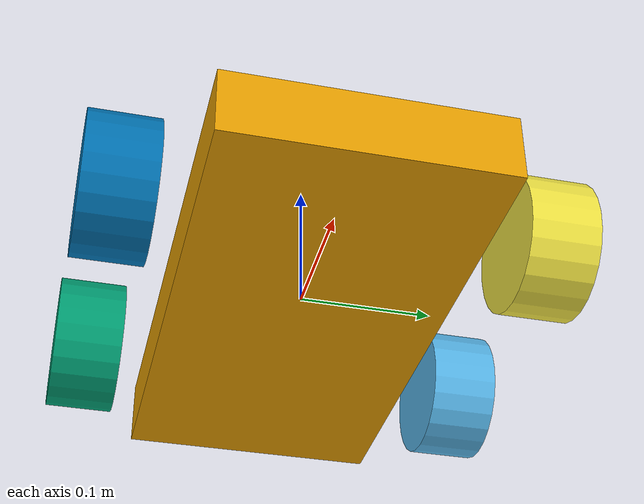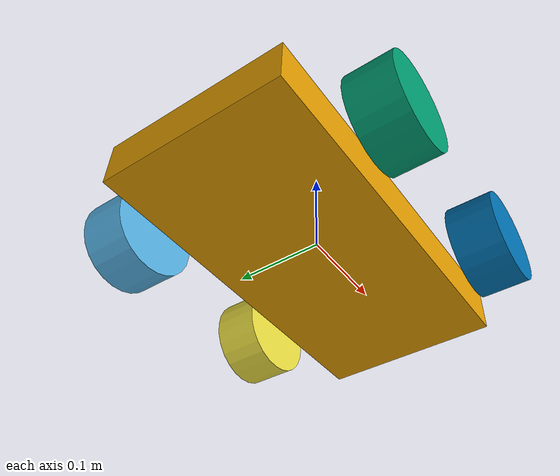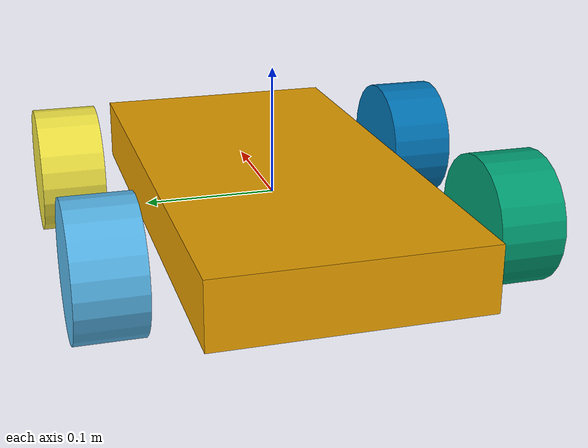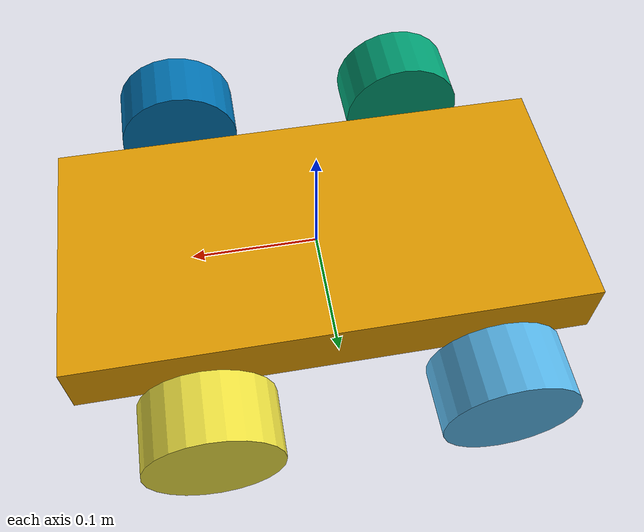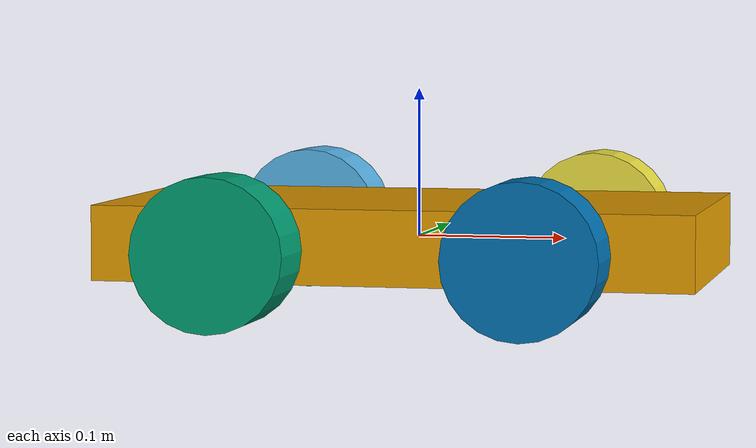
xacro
<?xml version='1.0'?>

<robot name="twister" xmlns:xacro="http://www.ros.org/wiki/xacro">

<!--xacro:property name="width" value="0.2" /  ${width}-->
<xacro:property name="width" value="0.2" />
<!-- CHASSIS -->

  <link name="chassis">
    <pose>0 0 0 0 0 0</pose>
    <inertial>
      <mass value="10.0"/>
      <origin xyz="0.0 0 0" rpy=" 0 0 0"/>
      <inertia
          ixx="0.09" ixy="0" ixz="0"
          iyy="0.09" iyz="0"
          izz="0.09"
      />
    </inertial>

    <collision name='collision'>
      <geometry>
	      <box size=".4 ${width} .05"/>
      </geometry>
    </collision>

    <visual name='chassis_visual'>
      <origin xyz="0 0 0" rpy=" 0 0 0"/>
      <geometry>
        <box size=".4 .2 .05"/>
      </geometry>
    </visual>

 </link>

<!-- WHEEL LINKS -->

  <link name="left_back_wheel">

    <collision name="collision">
      <origin xyz="0 0 0" rpy="0 1.5707 1.5707"/>
      <geometry>
        <cylinder radius="0.05" length="0.05"/>
      </geometry>
    </collision>
    <visual name="left_wheel_visual">
      <origin xyz="0 0 0" rpy="0 1.5707 1.5707"/>
      <geometry>
        <cylinder radius="0.05" length="0.05"/>
      </geometry>
    </visual>
    <inertial>
      <origin xyz="0 0 0" rpy="0 1.5707 1.5707"/>
      <mass value="1"/>
      <cylinder_inertia m="1" r="0.05" h="0.05"/>
      <inertia
        ixx="0.013" ixy="0.0" ixz="0.0"
        iyy="0.013" iyz="0.0"
        izz="0.013"/>
    </inertial>
  </link>

  <link name="right_back_wheel">

    <collision name="collision">
      <origin xyz="0 0 0" rpy="0 1.5707 1.5707"/>
      <geometry>
        <cylinder radius="0.05" length="0.05"/>
      </geometry>
    </collision>
    <visual name="right_wheel_visual">
      <origin xyz="0 0 0" rpy="0 1.5707 1.5707"/>
      <geometry>
        <cylinder radius="0.05" length="0.05"/>
      </geometry>
    </visual>
    <inertial>
      <origin xyz="0 0 0" rpy="0 1.5707 1.5707"/>
      <mass value="1"/>
      <cylinder_inertia m="1" r="0.05" h="0.05"/>
      <inertia
        ixx="0.013" ixy="0.0" ixz="0.0"
        iyy="0.013" iyz="0.0"
        izz="0.013"/>
    </inertial>
  </link>

  <link name="left_front_wheel">

    <collision name="collision">
      <origin xyz="0 0 0" rpy="0 1.5707 1.5707"/>
      <geometry>
        <cylinder radius="0.05" length="0.05"/>
      </geometry>
    </collision>
    <visual name="left_wheel_fvisual">
      <origin xyz="0 0 0" rpy="0 1.5707 1.5707"/>
      <geometry>
        <cylinder radius="0.05" length="0.05"/>
      </geometry>
    </visual>
    <inertial>
      <origin xyz="0 0 0" rpy="0 1.5707 1.5707"/>
      <mass value="1"/>
      <cylinder_inertia m="1" r="0.05" h="0.05"/>
      <inertia
        ixx="0.013" ixy="0.0" ixz="0.0"
        iyy="0.013" iyz="0.0"
        izz="0.013"/>
    </inertial>
  </link>

  <link name="right_front_wheel">

    <collision name="collision">
      <origin xyz="0 0 0" rpy="0 1.5707 1.5707"/>
      <geometry>
        <cylinder radius="0.05" length="0.05"/>
      </geometry>
    </collision>
    <visual name="right_wheel_fvisual">
      <origin xyz="0 0 0" rpy="0 1.5707 1.5707"/>
      <geometry>
        <cylinder radius="0.05" length="0.05"/>
      </geometry>
    </visual>
    <inertial>
      <origin xyz="0 0 0" rpy="0 1.5707 1.5707"/>
      <mass value="1"/>
      <cylinder_inertia m="1" r="0.05" h="0.05"/>
      <inertia
        ixx="0.013" ixy="0.0" ixz="0.0"
        iyy="0.013" iyz="0.0"
        izz="0.013"/>
    </inertial>
  </link>

<!-- WHEEL JOINTS -->

  <joint type="continuous" name="left_wheel_front_joint">
    <origin xyz="0.1 0.15 0" rpy="0 0 0"/>
    <child link="left_front_wheel"/>
    <parent link="chassis"/>
    <axis xyz="0 1 0" rpy="0 0 0"/>
    <limit effort="100" velocity="500"/>
    <joint_properties damping="0.0" friction="0.0"/>
  </joint>

  <joint type="continuous" name="right_wheel_front_joint">
    <origin xyz="0.1 -0.15 0" rpy="0 0 0"/>
    <child link="right_front_wheel"/>
    <parent link="chassis"/>
    <axis xyz="0 1 0" rpy="0 0 0"/>
    <limit effort="100" velocity="500"/>
    <joint_properties damping="0.0" friction="0.0"/>
  </joint>

 <joint type="continuous" name="left_wheel_back_joint">
    <origin xyz="-0.11 0.15 0" rpy="0 0 0"/>
    <child link="left_back_wheel"/>
    <parent link="chassis"/>
    <axis xyz="0 1 0" rpy="0 0 0"/>
    <limit effort="100" velocity="500"/>
    <joint_properties damping="0.0" friction="0.0"/>
  </joint>

  <joint type="continuous" name="right_wheel_back_joint">
    <origin xyz="-0.1 -0.15 0" rpy="0 0 0"/>
    <child link="right_back_wheel"/>
    <parent link="chassis"/>
    <axis xyz="0 1 0" rpy="0 0 0"/>
    <limit effort="100" velocity="500"/>
    <joint_properties damping="0.0" friction="0"/>
  </joint>

  <!-- TRANSMISSIONS-->

  <transmission name="right_front_wheel_to_chassis">
    <type>transmission_interface/SimpleTransmission</type>
    <joint name="right_wheel_front_joint">
      <hardwareInterface>hardware_interface/EffortJointInterface</hardwareInterface>
    </joint>
    <actuator name="right_wheel_front_actuator">
      <hardwareInterface>hardware_interface/EffortJointInterface</hardwareInterface>
      <mechanicalReduction>1</mechanicalReduction>
    </actuator>
  </transmission>

    <transmission name="left_front_wheel_to_chassis">
    <type>transmission_interface/SimpleTransmission</type>
    <joint name="left_wheel_front_joint">
      <hardwareInterface>hardware_interface/EffortJointInterface</hardwareInterface>
    </joint>
    <actuator name="left_wheel_front_actuator">
      <hardwareInterface>hardware_interface/EffortJointInterface</hardwareInterface>
      <mechanicalReduction>1</mechanicalReduction>
    </actuator>
  </transmission>

    <transmission name="right_back_wheel_to_chassis">
    <type>transmission_interface/SimpleTransmission</type>
    <joint name="right_wheel_back_joint">
      <hardwareInterface>hardware_interface/EffortJointInterface</hardwareInterface>
    </joint>
    <actuator name="lright_wheel_back_actuator">
      <hardwareInterface>hardware_interface/EffortJointInterface</hardwareInterface>
      <mechanicalReduction>1</mechanicalReduction>
    </actuator>
  </transmission>

    <transmission name="left_back_wheel_to_chassis">
    <type>transmission_interface/SimpleTransmission</type>
    <joint name="left_wheel_back_joint">
      <hardwareInterface>hardware_interface/EffortJointInterface</hardwareInterface>
    </joint>
    <actuator name="left_wheel_back_actuator">
      <hardwareInterface>hardware_interface/EffortJointInterface</hardwareInterface>
      <mechanicalReduction>1</mechanicalReduction>
    </actuator>
  </transmission>

<!-- END -->

  <gazebo>
    <plugin name="gazebo_ros_control" filename="libgazebo_ros_control.so">
      <robotNamespace>/twister</robotNamespace>
      <robotSimType>gazebo_ros_control/DefaultRobotHWSim</robotSimType>
    </plugin>
  </gazebo>

</robot>
